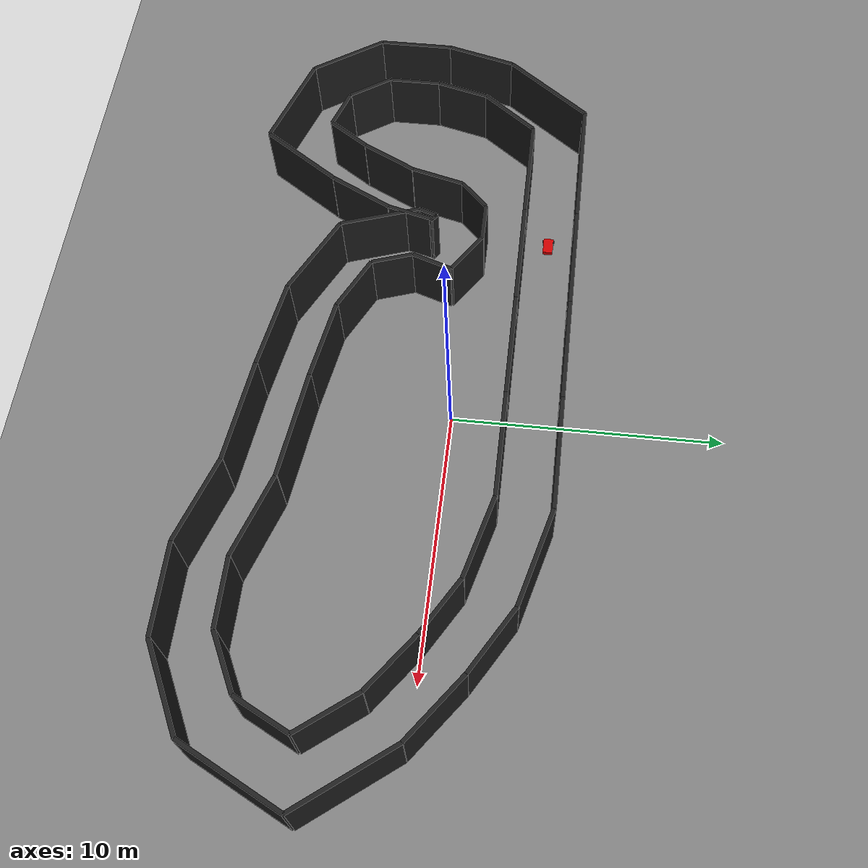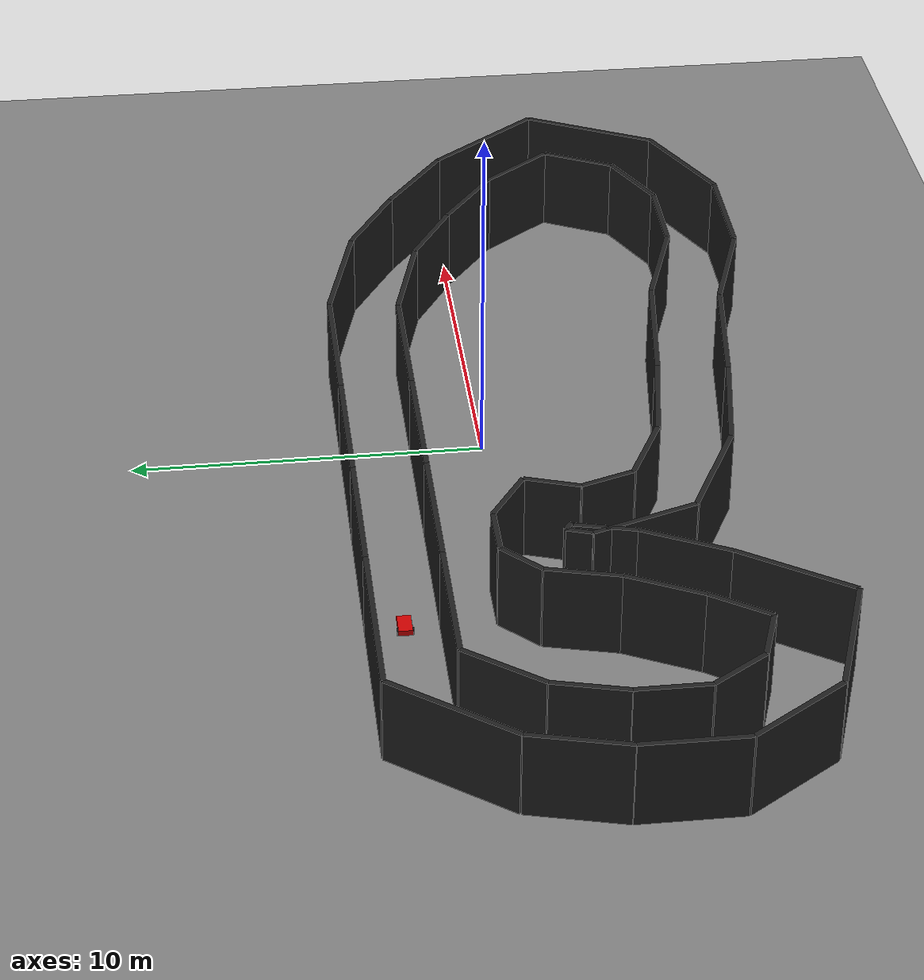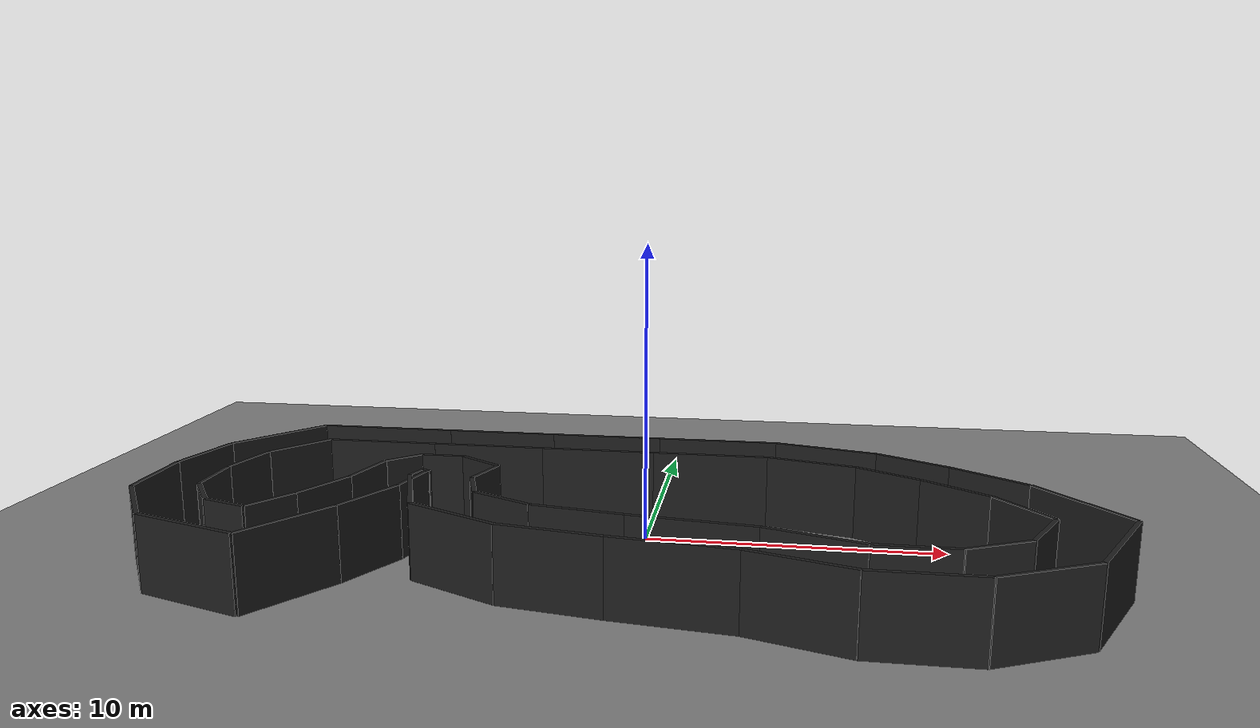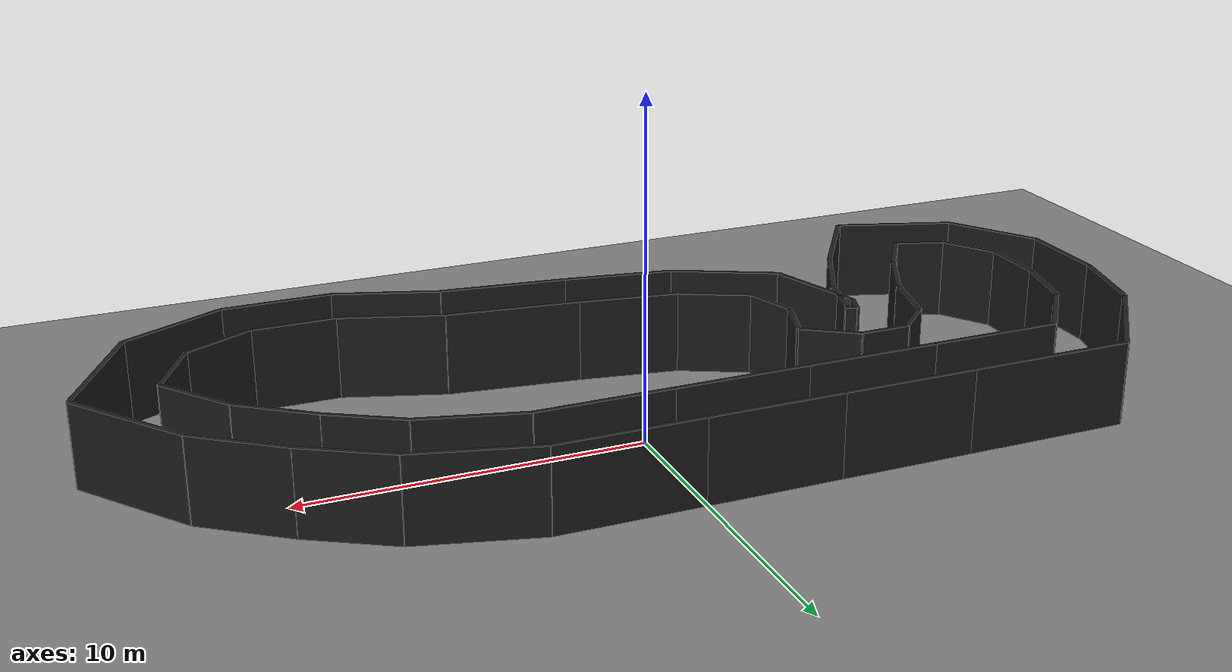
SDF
<?xml version="1.0" ?>
<sdf version="1.8">
    <world name="f1_circuit_world">
        <physics name="1ms" type="ignored">
            <max_step_size>0.001</max_step_size>
            <real_time_factor>1.0</real_time_factor>
        </physics>
        <plugin filename="libignition-gazebo-physics-system.so" name="ignition::gazebo::systems::Physics" />
        <plugin filename="libignition-gazebo-user-commands-system.so" name="ignition::gazebo::systems::UserCommands" />
        <plugin filename="libignition-gazebo-scene-broadcaster-system.so" name="ignition::gazebo::systems::SceneBroadcaster" />
        <plugin filename="libignition-gazebo-sensors-system.so" name="ignition::gazebo::systems::Sensors">
            <render_engine>ogre2</render_engine>
        </plugin>
        <light type="directional" name="sun">
            <cast_shadows>true</cast_shadows>
            <pose>0 0 20 0 0 0</pose>
            <diffuse>0.9 0.9 0.9 1</diffuse>
            <specular>0.3 0.3 0.3 1</specular>
            <direction>-0.5 0.1 -0.9</direction>
        </light>
        <model name="ground_plane">
            <static>true</static>
            <link name="link">
                <collision name="collision"><geometry><plane><normal>0 0 1</normal></plane></geometry></collision>
                <visual name="visual">
                    <geometry><plane><normal>0 0 1</normal><size>200 200</size></plane></geometry>
                    <material><ambient>0.5 0.5 0.5 1</ambient><diffuse>0.5 0.5 0.5 1</diffuse></material>
                </visual>
            </link>
        </model>
        <model name="f1_track">
            <static>true</static>
    <link name='outer_0'>
      <collision name='outer_0_col'>
        <geometry><box><size>4.0000 0.15 2.5</size></box></geometry>
        <pose>0 0 1.25 0 -0 0</pose>
      </collision>
      <visual name='outer_0_vis'>
        <pose>0 0 1.25 0 -0 0</pose>
        <geometry><box><size>4.0000 0.15 2.5</size></box></geometry>
        <material><ambient>0.08 0.08 0.08 1</ambient><diffuse>0.12 0.12 0.12 1</diffuse></material>
      </visual>
      <pose>-10.0000 2.0000 0 0 -0 0.00000</pose>
    </link>
    <link name='outer_1'>
      <collision name='outer_1_col'>
        <geometry><box><size>4.0000 0.15 2.5</size></box></geometry>
        <pose>0 0 1.25 0 -0 0</pose>
      </collision>
      <visual name='outer_1_vis'>
        <pose>0 0 1.25 0 -0 0</pose>
        <geometry><box><size>4.0000 0.15 2.5</size></box></geometry>
        <material><ambient>0.08 0.08 0.08 1</ambient><diffuse>0.12 0.12 0.12 1</diffuse></material>
      </visual>
      <pose>-6.0000 2.0000 0 0 -0 0.00000</pose>
    </link>
    <link name='outer_2'>
      <collision name='outer_2_col'>
        <geometry><box><size>4.0000 0.15 2.5</size></box></geometry>
        <pose>0 0 1.25 0 -0 0</pose>
      </collision>
      <visual name='outer_2_vis'>
        <pose>0 0 1.25 0 -0 0</pose>
        <geometry><box><size>4.0000 0.15 2.5</size></box></geometry>
        <material><ambient>0.08 0.08 0.08 1</ambient><diffuse>0.12 0.12 0.12 1</diffuse></material>
      </visual>
      <pose>-2.0000 2.0000 0 0 -0 0.00000</pose>
    </link>
    <link name='outer_3'>
      <collision name='outer_3_col'>
        <geometry><box><size>4.0000 0.15 2.5</size></box></geometry>
        <pose>0 0 1.25 0 -0 0</pose>
      </collision>
      <visual name='outer_3_vis'>
        <pose>0 0 1.25 0 -0 0</pose>
        <geometry><box><size>4.0000 0.15 2.5</size></box></geometry>
        <material><ambient>0.08 0.08 0.08 1</ambient><diffuse>0.12 0.12 0.12 1</diffuse></material>
      </visual>
      <pose>2.0000 2.0000 0 0 -0 0.00000</pose>
    </link>
    <link name='outer_4'>
      <collision name='outer_4_col'>
        <geometry><box><size>3.1048 0.15 2.5</size></box></geometry>
        <pose>0 0 1.25 0 -0 0</pose>
      </collision>
      <visual name='outer_4_vis'>
        <pose>0 0 1.25 0 -0 0</pose>
        <geometry><box><size>3.1048 0.15 2.5</size></box></geometry>
        <material><ambient>0.08 0.08 0.08 1</ambient><diffuse>0.12 0.12 0.12 1</diffuse></material>
      </visual>
      <pose>5.5000 1.6000 0 0 -0 -0.26060</pose>
    </link>
    <link name='outer_5'>
      <collision name='outer_5_col'>
        <geometry><box><size>2.3324 0.15 2.5</size></box></geometry>
        <pose>0 0 1.25 0 -0 0</pose>
      </collision>
      <visual name='outer_5_vis'>
        <pose>0 0 1.25 0 -0 0</pose>
        <geometry><box><size>2.3324 0.15 2.5</size></box></geometry>
        <material><ambient>0.08 0.08 0.08 1</ambient><diffuse>0.12 0.12 0.12 1</diffuse></material>
      </visual>
      <pose>8.0000 0.6000 0 0 -0 -0.54042</pose>
    </link>
    <link name='outer_6'>
      <collision name='outer_6_col'>
        <geometry><box><size>2.5000 0.15 2.5</size></box></geometry>
        <pose>0 0 1.25 0 -0 0</pose>
      </collision>
      <visual name='outer_6_vis'>
        <pose>0 0 1.25 0 -0 0</pose>
        <geometry><box><size>2.5000 0.15 2.5</size></box></geometry>
        <material><ambient>0.08 0.08 0.08 1</ambient><diffuse>0.12 0.12 0.12 1</diffuse></material>
      </visual>
      <pose>10.0000 -0.7500 0 0 -0 -0.64350</pose>
    </link>
    <link name='outer_7'>
      <collision name='outer_7_col'>
        <geometry><box><size>2.5000 0.15 2.5</size></box></geometry>
        <pose>0 0 1.25 0 -0 0</pose>
      </collision>
      <visual name='outer_7_vis'>
        <pose>0 0 1.25 0 -0 0</pose>
        <geometry><box><size>2.5000 0.15 2.5</size></box></geometry>
        <material><ambient>0.08 0.08 0.08 1</ambient><diffuse>0.12 0.12 0.12 1</diffuse></material>
      </visual>
      <pose>11.7500 -2.5000 0 0 -0 -0.92730</pose>
    </link>
    <link name='outer_8'>
      <collision name='outer_8_col'>
        <geometry><box><size>2.2361 0.15 2.5</size></box></geometry>
        <pose>0 0 1.25 0 -0 0</pose>
      </collision>
      <visual name='outer_8_vis'>
        <pose>0 0 1.25 0 -0 0</pose>
        <geometry><box><size>2.2361 0.15 2.5</size></box></geometry>
        <material><ambient>0.08 0.08 0.08 1</ambient><diffuse>0.12 0.12 0.12 1</diffuse></material>
      </visual>
      <pose>12.0000 -4.5000 0 0 -0 -2.03444</pose>
    </link>
    <link name='outer_9'>
      <collision name='outer_9_col'>
        <geometry><box><size>2.2361 0.15 2.5</size></box></geometry>
        <pose>0 0 1.25 0 -0 0</pose>
      </collision>
      <visual name='outer_9_vis'>
        <pose>0 0 1.25 0 -0 0</pose>
        <geometry><box><size>2.2361 0.15 2.5</size></box></geometry>
        <material><ambient>0.08 0.08 0.08 1</ambient><diffuse>0.12 0.12 0.12 1</diffuse></material>
      </visual>
      <pose>10.5000 -6.0000 0 0 -0 -2.67795</pose>
    </link>
    <link name='outer_10'>
      <collision name='outer_10_col'>
        <geometry><box><size>2.5000 0.15 2.5</size></box></geometry>
        <pose>0 0 1.25 0 -0 0</pose>
      </collision>
      <visual name='outer_10_vis'>
        <pose>0 0 1.25 0 -0 0</pose>
        <geometry><box><size>2.5000 0.15 2.5</size></box></geometry>
        <material><ambient>0.08 0.08 0.08 1</ambient><diffuse>0.12 0.12 0.12 1</diffuse></material>
      </visual>
      <pose>8.2500 -6.5000 0 0 -0 3.14159</pose>
    </link>
    <link name='outer_11'>
      <collision name='outer_11_col'>
        <geometry><box><size>3.1623 0.15 2.5</size></box></geometry>
        <pose>0 0 1.25 0 -0 0</pose>
      </collision>
      <visual name='outer_11_vis'>
        <pose>0 0 1.25 0 -0 0</pose>
        <geometry><box><size>3.1623 0.15 2.5</size></box></geometry>
        <material><ambient>0.08 0.08 0.08 1</ambient><diffuse>0.12 0.12 0.12 1</diffuse></material>
      </visual>
      <pose>5.5000 -6.0000 0 0 -0 2.81984</pose>
    </link>
    <link name='outer_12'>
      <collision name='outer_12_col'>
        <geometry><box><size>4.0311 0.15 2.5</size></box></geometry>
        <pose>0 0 1.25 0 -0 0</pose>
      </collision>
      <visual name='outer_12_vis'>
        <pose>0 0 1.25 0 -0 0</pose>
        <geometry><box><size>4.0311 0.15 2.5</size></box></geometry>
        <material><ambient>0.08 0.08 0.08 1</ambient><diffuse>0.12 0.12 0.12 1</diffuse></material>
      </visual>
      <pose>2.0000 -5.2500 0 0 -0 3.01724</pose>
    </link>
    <link name='outer_13'>
      <collision name='outer_13_col'>
        <geometry><box><size>3.0414 0.15 2.5</size></box></geometry>
        <pose>0 0 1.25 0 -0 0</pose>
      </collision>
      <visual name='outer_13_vis'>
        <pose>0 0 1.25 0 -0 0</pose>
        <geometry><box><size>3.0414 0.15 2.5</size></box></geometry>
        <material><ambient>0.08 0.08 0.08 1</ambient><diffuse>0.12 0.12 0.12 1</diffuse></material>
      </visual>
      <pose>-1.5000 -4.7500 0 0 -0 2.97644</pose>
    </link>
    <link name='outer_14'>
      <collision name='outer_14_col'>
        <geometry><box><size>2.2361 0.15 2.5</size></box></geometry>
        <pose>0 0 1.25 0 -0 0</pose>
      </collision>
      <visual name='outer_14_vis'>
        <pose>0 0 1.25 0 -0 0</pose>
        <geometry><box><size>2.2361 0.15 2.5</size></box></geometry>
        <material><ambient>0.08 0.08 0.08 1</ambient><diffuse>0.12 0.12 0.12 1</diffuse></material>
      </visual>
      <pose>-4.0000 -4.0000 0 0 -0 2.67795</pose>
    </link>
    <link name='outer_15'>
      <collision name='outer_15_col'>
        <geometry><box><size>1.5811 0.15 2.5</size></box></geometry>
        <pose>0 0 1.25 0 -0 0</pose>
      </collision>
      <visual name='outer_15_vis'>
        <pose>0 0 1.25 0 -0 0</pose>
        <geometry><box><size>1.5811 0.15 2.5</size></box></geometry>
        <material><ambient>0.08 0.08 0.08 1</ambient><diffuse>0.12 0.12 0.12 1</diffuse></material>
      </visual>
      <pose>-5.2500 -2.7500 0 0 -0 1.89255</pose>
    </link>
    <link name='outer_16'>
      <collision name='outer_16_col'>
        <geometry><box><size>1.5811 0.15 2.5</size></box></geometry>
        <pose>0 0 1.25 0 -0 0</pose>
      </collision>
      <visual name='outer_16_vis'>
        <pose>0 0 1.25 0 -0 0</pose>
        <geometry><box><size>1.5811 0.15 2.5</size></box></geometry>
        <material><ambient>0.08 0.08 0.08 1</ambient><diffuse>0.12 0.12 0.12 1</diffuse></material>
      </visual>
      <pose>-5.2500 -1.2500 0 0 -0 1.24905</pose>
    </link>
    <link name='outer_17'>
      <collision name='outer_17_col'>
        <geometry><box><size>1.8028 0.15 2.5</size></box></geometry>
        <pose>0 0 1.25 0 -0 0</pose>
      </collision>
      <visual name='outer_17_vis'>
        <pose>0 0 1.25 0 -0 0</pose>
        <geometry><box><size>1.8028 0.15 2.5</size></box></geometry>
        <material><ambient>0.08 0.08 0.08 1</ambient><diffuse>0.12 0.12 0.12 1</diffuse></material>
      </visual>
      <pose>-5.7500 0.0000 0 0 -0 2.55359</pose>
    </link>
    <link name='outer_18'>
      <collision name='outer_18_col'>
        <geometry><box><size>1.5000 0.15 2.5</size></box></geometry>
        <pose>0 0 1.25 0 -0 0</pose>
      </collision>
      <visual name='outer_18_vis'>
        <pose>0 0 1.25 0 -0 0</pose>
        <geometry><box><size>1.5000 0.15 2.5</size></box></geometry>
        <material><ambient>0.08 0.08 0.08 1</ambient><diffuse>0.12 0.12 0.12 1</diffuse></material>
      </visual>
      <pose>-7.2500 0.5000 0 0 -0 3.14159</pose>
    </link>
    <link name='outer_19'>
      <collision name='outer_19_col'>
        <geometry><box><size>1.4142 0.15 2.5</size></box></geometry>
        <pose>0 0 1.25 0 -0 0</pose>
      </collision>
      <visual name='outer_19_vis'>
        <pose>0 0 1.25 0 -0 0</pose>
        <geometry><box><size>1.4142 0.15 2.5</size></box></geometry>
        <material><ambient>0.08 0.08 0.08 1</ambient><diffuse>0.12 0.12 0.12 1</diffuse></material>
      </visual>
      <pose>-8.5000 0.0000 0 0 -0 -2.35619</pose>
    </link>
    <link name='outer_20'>
      <collision name='outer_20_col'>
        <geometry><box><size>2.0616 0.15 2.5</size></box></geometry>
        <pose>0 0 1.25 0 -0 0</pose>
      </collision>
      <visual name='outer_20_vis'>
        <pose>0 0 1.25 0 -0 0</pose>
        <geometry><box><size>2.0616 0.15 2.5</size></box></geometry>
        <material><ambient>0.08 0.08 0.08 1</ambient><diffuse>0.12 0.12 0.12 1</diffuse></material>
      </visual>
      <pose>-9.2500 -1.5000 0 0 -0 -1.81577</pose>
    </link>
    <link name='outer_21'>
      <collision name='outer_21_col'>
        <geometry><box><size>2.2361 0.15 2.5</size></box></geometry>
        <pose>0 0 1.25 0 -0 0</pose>
      </collision>
      <visual name='outer_21_vis'>
        <pose>0 0 1.25 0 -0 0</pose>
        <geometry><box><size>2.2361 0.15 2.5</size></box></geometry>
        <material><ambient>0.08 0.08 0.08 1</ambient><diffuse>0.12 0.12 0.12 1</diffuse></material>
      </visual>
      <pose>-10.0000 -3.5000 0 0 -0 -2.03444</pose>
    </link>
    <link name='outer_22'>
      <collision name='outer_22_col'>
        <geometry><box><size>1.8028 0.15 2.5</size></box></geometry>
        <pose>0 0 1.25 0 -0 0</pose>
      </collision>
      <visual name='outer_22_vis'>
        <pose>0 0 1.25 0 -0 0</pose>
        <geometry><box><size>1.8028 0.15 2.5</size></box></geometry>
        <material><ambient>0.08 0.08 0.08 1</ambient><diffuse>0.12 0.12 0.12 1</diffuse></material>
      </visual>
      <pose>-11.0000 -5.2500 0 0 -0 -2.15880</pose>
    </link>
    <link name='outer_23'>
      <collision name='outer_23_col'>
        <geometry><box><size>1.5811 0.15 2.5</size></box></geometry>
        <pose>0 0 1.25 0 -0 0</pose>
      </collision>
      <visual name='outer_23_vis'>
        <pose>0 0 1.25 0 -0 0</pose>
        <geometry><box><size>1.5811 0.15 2.5</size></box></geometry>
        <material><ambient>0.08 0.08 0.08 1</ambient><diffuse>0.12 0.12 0.12 1</diffuse></material>
      </visual>
      <pose>-12.2500 -5.7500 0 0 -0 2.81984</pose>
    </link>
    <link name='outer_24'>
      <collision name='outer_24_col'>
        <geometry><box><size>1.8028 0.15 2.5</size></box></geometry>
        <pose>0 0 1.25 0 -0 0</pose>
      </collision>
      <visual name='outer_24_vis'>
        <pose>0 0 1.25 0 -0 0</pose>
        <geometry><box><size>1.8028 0.15 2.5</size></box></geometry>
        <material><ambient>0.08 0.08 0.08 1</ambient><diffuse>0.12 0.12 0.12 1</diffuse></material>
      </visual>
      <pose>-13.5000 -4.7500 0 0 -0 2.15880</pose>
    </link>
    <link name='outer_25'>
      <collision name='outer_25_col'>
        <geometry><box><size>2.0000 0.15 2.5</size></box></geometry>
        <pose>0 0 1.25 0 -0 0</pose>
      </collision>
      <visual name='outer_25_vis'>
        <pose>0 0 1.25 0 -0 0</pose>
        <geometry><box><size>2.0000 0.15 2.5</size></box></geometry>
        <material><ambient>0.08 0.08 0.08 1</ambient><diffuse>0.12 0.12 0.12 1</diffuse></material>
      </visual>
      <pose>-14.0000 -3.0000 0 0 -0 1.57080</pose>
    </link>
    <link name='outer_26'>
      <collision name='outer_26_col'>
        <geometry><box><size>2.0616 0.15 2.5</size></box></geometry>
        <pose>0 0 1.25 0 -0 0</pose>
      </collision>
      <visual name='outer_26_vis'>
        <pose>0 0 1.25 0 -0 0</pose>
        <geometry><box><size>2.0616 0.15 2.5</size></box></geometry>
        <material><ambient>0.08 0.08 0.08 1</ambient><diffuse>0.12 0.12 0.12 1</diffuse></material>
      </visual>
      <pose>-13.7500 -1.0000 0 0 -0 1.32582</pose>
    </link>
    <link name='outer_27'>
      <collision name='outer_27_col'>
        <geometry><box><size>2.5000 0.15 2.5</size></box></geometry>
        <pose>0 0 1.25 0 -0 0</pose>
      </collision>
      <visual name='outer_27_vis'>
        <pose>0 0 1.25 0 -0 0</pose>
        <geometry><box><size>2.5000 0.15 2.5</size></box></geometry>
        <material><ambient>0.08 0.08 0.08 1</ambient><diffuse>0.12 0.12 0.12 1</diffuse></material>
      </visual>
      <pose>-12.7500 1.0000 0 0 -0 0.92730</pose>
    </link>
    <link name='inner_0'>
      <collision name='inner_0_col'>
        <geometry><box><size>5.0000 0.15 2.5</size></box></geometry>
        <pose>0 0 1.25 0 -0 0</pose>
      </collision>
      <visual name='inner_0_vis'>
        <pose>0 0 1.25 0 -0 0</pose>
        <geometry><box><size>5.0000 0.15 2.5</size></box></geometry>
        <material><ambient>0.08 0.08 0.08 1</ambient><diffuse>0.12 0.12 0.12 1</diffuse></material>
      </visual>
      <pose>-10.5000 4.0000 0 0 -0 0.00000</pose>
    </link>
    <link name='inner_1'>
      <collision name='inner_1_col'>
        <geometry><box><size>4.0000 0.15 2.5</size></box></geometry>
        <pose>0 0 1.25 0 -0 0</pose>
      </collision>
      <visual name='inner_1_vis'>
        <pose>0 0 1.25 0 -0 0</pose>
        <geometry><box><size>4.0000 0.15 2.5</size></box></geometry>
        <material><ambient>0.08 0.08 0.08 1</ambient><diffuse>0.12 0.12 0.12 1</diffuse></material>
      </visual>
      <pose>-6.0000 4.0000 0 0 -0 0.00000</pose>
    </link>
    <link name='inner_2'>
      <collision name='inner_2_col'>
        <geometry><box><size>4.0000 0.15 2.5</size></box></geometry>
        <pose>0 0 1.25 0 -0 0</pose>
      </collision>
      <visual name='inner_2_vis'>
        <pose>0 0 1.25 0 -0 0</pose>
        <geometry><box><size>4.0000 0.15 2.5</size></box></geometry>
        <material><ambient>0.08 0.08 0.08 1</ambient><diffuse>0.12 0.12 0.12 1</diffuse></material>
      </visual>
      <pose>-2.0000 4.0000 0 0 -0 0.00000</pose>
    </link>
    <link name='inner_3'>
      <collision name='inner_3_col'>
        <geometry><box><size>4.2621 0.15 2.5</size></box></geometry>
        <pose>0 0 1.25 0 -0 0</pose>
      </collision>
      <visual name='inner_3_vis'>
        <pose>0 0 1.25 0 -0 0</pose>
        <geometry><box><size>4.2621 0.15 2.5</size></box></geometry>
        <material><ambient>0.08 0.08 0.08 1</ambient><diffuse>0.12 0.12 0.12 1</diffuse></material>
      </visual>
      <pose>2.1310 4.0000 0 0 -0 0.00000</pose>
    </link>
    <link name='inner_4'>
      <collision name='inner_4_col'>
        <geometry><box><size>3.6486 0.15 2.5</size></box></geometry>
        <pose>0 0 1.25 0 -0 0</pose>
      </collision>
      <visual name='inner_4_vis'>
        <pose>0 0 1.25 0 -0 0</pose>
        <geometry><box><size>3.6486 0.15 2.5</size></box></geometry>
        <material><ambient>0.08 0.08 0.08 1</ambient><diffuse>0.12 0.12 0.12 1</diffuse></material>
      </visual>
      <pose>6.0248 3.5299 0 0 -0 -0.26060</pose>
    </link>
    <link name='inner_5'>
      <collision name='inner_5_col'>
        <geometry><box><size>2.7172 0.15 2.5</size></box></geometry>
        <pose>0 0 1.25 0 -0 0</pose>
      </collision>
      <visual name='inner_5_vis'>
        <pose>0 0 1.25 0 -0 0</pose>
        <geometry><box><size>2.7172 0.15 2.5</size></box></geometry>
        <material><ambient>0.08 0.08 0.08 1</ambient><diffuse>0.12 0.12 0.12 1</diffuse></material>
      </visual>
      <pose>8.9525 2.3609 0 0 -0 -0.54042</pose>
    </link>
    <link name='inner_6'>
      <collision name='inner_6_col'>
        <geometry><box><size>2.8889 0.15 2.5</size></box></geometry>
        <pose>0 0 1.25 0 -0 0</pose>
      </collision>
      <visual name='inner_6_vis'>
        <pose>0 0 1.25 0 -0 0</pose>
        <geometry><box><size>2.8889 0.15 2.5</size></box></geometry>
        <material><ambient>0.08 0.08 0.08 1</ambient><diffuse>0.12 0.12 0.12 1</diffuse></material>
      </visual>
      <pose>11.2730 0.7952 0 0 -0 -0.64350</pose>
    </link>
    <link name='inner_7'>
      <collision name='inner_7_col'>
        <geometry><box><size>4.0218 0.15 2.5</size></box></geometry>
        <pose>0 0 1.25 0 -0 0</pose>
      </collision>
      <visual name='inner_7_vis'>
        <pose>0 0 1.25 0 -0 0</pose>
        <geometry><box><size>4.0218 0.15 2.5</size></box></geometry>
        <material><ambient>0.08 0.08 0.08 1</ambient><diffuse>0.12 0.12 0.12 1</diffuse></material>
      </visual>
      <pose>13.6351 -1.6801 0 0 -0 -0.92730</pose>
    </link>
    <link name='inner_8'>
      <collision name='inner_8_col'>
        <geometry><box><size>4.1388 0.15 2.5</size></box></geometry>
        <pose>0 0 1.25 0 -0 0</pose>
      </collision>
      <visual name='inner_8_vis'>
        <pose>0 0 1.25 0 -0 0</pose>
        <geometry><box><size>4.1388 0.15 2.5</size></box></geometry>
        <material><ambient>0.08 0.08 0.08 1</ambient><diffuse>0.12 0.12 0.12 1</diffuse></material>
      </visual>
      <pose>13.9162 -5.1398 0 0 -0 -2.03444</pose>
    </link>
    <link name='inner_9'>
      <collision name='inner_9_col'>
        <geometry><box><size>3.3749 0.15 2.5</size></box></geometry>
        <pose>0 0 1.25 0 -0 0</pose>
      </collision>
      <visual name='inner_9_vis'>
        <pose>0 0 1.25 0 -0 0</pose>
        <geometry><box><size>3.3749 0.15 2.5</size></box></geometry>
        <material><ambient>0.08 0.08 0.08 1</ambient><diffuse>0.12 0.12 0.12 1</diffuse></material>
      </visual>
      <pose>11.4814 -7.7454 0 0 -0 -2.67795</pose>
    </link>
    <link name='inner_10'>
      <collision name='inner_10_col'>
        <geometry><box><size>3.2967 0.15 2.5</size></box></geometry>
        <pose>0 0 1.25 0 -0 0</pose>
      </collision>
      <visual name='inner_10_vis'>
        <pose>0 0 1.25 0 -0 0</pose>
        <geometry><box><size>3.2967 0.15 2.5</size></box></geometry>
        <material><ambient>0.08 0.08 0.08 1</ambient><diffuse>0.12 0.12 0.12 1</diffuse></material>
      </visual>
      <pose>8.3238 -8.5000 0 0 -0 3.14159</pose>
    </link>
    <link name='inner_11'>
      <collision name='inner_11_col'>
        <geometry><box><size>3.2888 0.15 2.5</size></box></geometry>
        <pose>0 0 1.25 0 -0 0</pose>
      </collision>
      <visual name='inner_11_vis'>
        <pose>0 0 1.25 0 -0 0</pose>
        <geometry><box><size>3.2888 0.15 2.5</size></box></geometry>
        <material><ambient>0.08 0.08 0.08 1</ambient><diffuse>0.12 0.12 0.12 1</diffuse></material>
      </visual>
      <pose>5.1154 -7.9800 0 0 -0 2.81984</pose>
    </link>
    <link name='inner_12'>
      <collision name='inner_12_col'>
        <geometry><box><size>3.8739 0.15 2.5</size></box></geometry>
        <pose>0 0 1.25 0 -0 0</pose>
      </collision>
      <visual name='inner_12_vis'>
        <pose>0 0 1.25 0 -0 0</pose>
        <geometry><box><size>3.8739 0.15 2.5</size></box></geometry>
        <material><ambient>0.08 0.08 0.08 1</ambient><diffuse>0.12 0.12 0.12 1</diffuse></material>
      </visual>
      <pose>1.6334 -7.2197 0 0 -0 3.01724</pose>
    </link>
    <link name='inner_13'>
      <collision name='inner_13_col'>
        <geometry><box><size>3.3829 0.15 2.5</size></box></geometry>
        <pose>0 0 1.25 0 -0 0</pose>
      </collision>
      <visual name='inner_13_vis'>
        <pose>0 0 1.25 0 -0 0</pose>
        <geometry><box><size>3.3829 0.15 2.5</size></box></geometry>
        <material><ambient>0.08 0.08 0.08 1</ambient><diffuse>0.12 0.12 0.12 1</diffuse></material>
      </visual>
      <pose>-1.9570 -6.7014 0 0 -0 2.97644</pose>
    </link>
    <link name='inner_14'>
      <collision name='inner_14_col'>
        <geometry><box><size>3.3652 0.15 2.5</size></box></geometry>
        <pose>0 0 1.25 0 -0 0</pose>
      </collision>
      <visual name='inner_14_vis'>
        <pose>0 0 1.25 0 -0 0</pose>
        <geometry><box><size>3.3652 0.15 2.5</size></box></geometry>
        <material><ambient>0.08 0.08 0.08 1</ambient><diffuse>0.12 0.12 0.12 1</diffuse></material>
      </visual>
      <pose>-5.1304 -5.6709 0 0 -0 2.67795</pose>
    </link>
    <link name='inner_15'>
      <collision name='inner_15_col'>
        <geometry><box><size>3.0762 0.15 2.5</size></box></geometry>
        <pose>0 0 1.25 0 -0 0</pose>
      </collision>
      <visual name='inner_15_vis'>
        <pose>0 0 1.25 0 -0 0</pose>
        <geometry><box><size>3.0762 0.15 2.5</size></box></geometry>
        <material><ambient>0.08 0.08 0.08 1</ambient><diffuse>0.12 0.12 0.12 1</diffuse></material>
      </visual>
      <pose>-7.1218 -3.4592 0 0 -0 1.89255</pose>
    </link>
    <link name='inner_16'>
      <collision name='inner_16_col'>
        <geometry><box><size>0.7202 0.15 2.5</size></box></geometry>
        <pose>0 0 1.25 0 -0 0</pose>
      </collision>
      <visual name='inner_16_vis'>
        <pose>0 0 1.25 0 -0 0</pose>
        <geometry><box><size>0.7202 0.15 2.5</size></box></geometry>
        <material><ambient>0.08 0.08 0.08 1</ambient><diffuse>0.12 0.12 0.12 1</diffuse></material>
      </visual>
      <pose>-7.4943 -1.6584 0 0 -0 1.24905</pose>
    </link>
    <link name='inner_17'>
      <collision name='inner_17_col'>
        <geometry><box><size>0.3304 0.15 2.5</size></box></geometry>
        <pose>0 0 1.25 0 -0 0</pose>
      </collision>
      <visual name='inner_17_vis'>
        <pose>0 0 1.25 0 -0 0</pose>
        <geometry><box><size>0.3304 0.15 2.5</size></box></geometry>
        <material><ambient>0.08 0.08 0.08 1</ambient><diffuse>0.12 0.12 0.12 1</diffuse></material>
      </visual>
      <pose>-7.2430 -1.4084 0 0 -0 -0.58800</pose>
    </link>
    <link name='inner_18'>
      <collision name='inner_18_col'>
        <geometry><box><size>0.0660 0.15 2.5</size></box></geometry>
        <pose>0 0 1.25 0 -0 0</pose>
      </collision>
      <visual name='inner_18_vis'>
        <pose>0 0 1.25 0 -0 0</pose>
        <geometry><box><size>0.0660 0.15 2.5</size></box></geometry>
        <material><ambient>0.08 0.08 0.08 1</ambient><diffuse>0.12 0.12 0.12 1</diffuse></material>
      </visual>
      <pose>-7.1386 -1.5000 0 0 -0 3.14159</pose>
    </link>
    <link name='inner_20'>
      <collision name='inner_20_col'>
        <geometry><box><size>1.7271 0.15 2.5</size></box></geometry>
        <pose>0 0 1.25 0 -0 0</pose>
      </collision>
      <visual name='inner_20_vis'>
        <pose>0 0 1.25 0 -0 0</pose>
        <geometry><box><size>1.7271 0.15 2.5</size></box></geometry>
        <material><ambient>0.08 0.08 0.08 1</ambient><diffuse>0.12 0.12 0.12 1</diffuse></material>
      </visual>
      <pose>-7.4035 -2.3603 0 0 -0 -1.81577</pose>
    </link>
    <link name='inner_21'>
      <collision name='inner_21_col'>
        <geometry><box><size>2.5801 0.15 2.5</size></box></geometry>
        <pose>0 0 1.25 0 -0 0</pose>
      </collision>
      <visual name='inner_21_vis'>
        <pose>0 0 1.25 0 -0 0</pose>
        <geometry><box><size>2.5801 0.15 2.5</size></box></geometry>
        <material><ambient>0.08 0.08 0.08 1</ambient><diffuse>0.12 0.12 0.12 1</diffuse></material>
      </visual>
      <pose>-8.1899 -4.3519 0 0 -0 -2.03444</pose>
    </link>
    <link name='inner_22'>
      <collision name='inner_22_col'>
        <geometry><box><size>3.4549 0.15 2.5</size></box></geometry>
        <pose>0 0 1.25 0 -0 0</pose>
      </collision>
      <visual name='inner_22_vis'>
        <pose>0 0 1.25 0 -0 0</pose>
        <geometry><box><size>3.4549 0.15 2.5</size></box></geometry>
        <material><ambient>0.08 0.08 0.08 1</ambient><diffuse>0.12 0.12 0.12 1</diffuse></material>
      </visual>
      <pose>-9.7250 -6.9431 0 0 -0 -2.15880</pose>
    </link>
    <link name='inner_23'>
      <collision name='inner_23_col'>
        <geometry><box><size>3.7949 0.15 2.5</size></box></geometry>
        <pose>0 0 1.25 0 -0 0</pose>
      </collision>
      <visual name='inner_23_vis'>
        <pose>0 0 1.25 0 -0 0</pose>
        <geometry><box><size>3.7949 0.15 2.5</size></box></geometry>
        <material><ambient>0.08 0.08 0.08 1</ambient><diffuse>0.12 0.12 0.12 1</diffuse></material>
      </visual>
      <pose>-12.4834 -7.7804 0 0 -0 2.81984</pose>
    </link>
    <link name='inner_24'>
      <collision name='inner_24_col'>
        <geometry><box><size>3.0945 0.15 2.5</size></box></geometry>
        <pose>0 0 1.25 0 -0 0</pose>
      </collision>
      <visual name='inner_24_vis'>
        <pose>0 0 1.25 0 -0 0</pose>
        <geometry><box><size>3.0945 0.15 2.5</size></box></geometry>
        <material><ambient>0.08 0.08 0.08 1</ambient><diffuse>0.12 0.12 0.12 1</diffuse></material>
      </visual>
      <pose>-15.1417 -5.8930 0 0 -0 2.15880</pose>
    </link>
    <link name='inner_25'>
      <collision name='inner_25_col'>
        <geometry><box><size>2.8518 0.15 2.5</size></box></geometry>
        <pose>0 0 1.25 0 -0 0</pose>
      </collision>
      <visual name='inner_25_vis'>
        <pose>0 0 1.25 0 -0 0</pose>
        <geometry><box><size>2.8518 0.15 2.5</size></box></geometry>
        <material><ambient>0.08 0.08 0.08 1</ambient><diffuse>0.12 0.12 0.12 1</diffuse></material>
      </visual>
      <pose>-16.0000 -3.1797 0 0 -0 1.57080</pose>
    </link>
    <link name='inner_26'>
      <collision name='inner_26_col'>
        <geometry><box><size>2.7116 0.15 2.5</size></box></geometry>
        <pose>0 0 1.25 0 -0 0</pose>
      </collision>
      <visual name='inner_26_vis'>
        <pose>0 0 1.25 0 -0 0</pose>
        <geometry><box><size>2.7116 0.15 2.5</size></box></geometry>
        <material><ambient>0.08 0.08 0.08 1</ambient><diffuse>0.12 0.12 0.12 1</diffuse></material>
      </visual>
      <pose>-15.6712 -0.4384 0 0 -0 1.32582</pose>
    </link>
    <link name='inner_27'>
      <collision name='inner_27_col'>
        <geometry><box><size>3.9039 0.15 2.5</size></box></geometry>
        <pose>0 0 1.25 0 -0 0</pose>
      </collision>
      <visual name='inner_27_vis'>
        <pose>0 0 1.25 0 -0 0</pose>
        <geometry><box><size>3.9039 0.15 2.5</size></box></geometry>
        <material><ambient>0.08 0.08 0.08 1</ambient><diffuse>0.12 0.12 0.12 1</diffuse></material>
      </visual>
      <pose>-14.1712 2.4384 0 0 -0 0.92730</pose>
    </link>
        </model>
        <model name='vehicle_red' canonical_link='chassis'>
            <pose>-8.0 3.0 0.15 0 0 0</pose>
            <link name='chassis'>
                <pose>0 0 0 0 0 0</pose>
                <inertial><mass>0.5</mass><inertia><ixx>0.02</ixx><ixy>0</ixy><ixz>0</ixz><iyy>0.05</iyy><iyz>0</iyz><izz>0.06</izz></inertia></inertial>
                <visual name='visual'><geometry><box><size>0.65 0.38 0.16</size></box></geometry>
                  <material><ambient>0.8 0.0 0.0 1</ambient><diffuse>0.8 0.0 0.0 1</diffuse></material></visual>
                <collision name='collision'><geometry><box><size>0.65 0.38 0.16</size></box></geometry></collision>
            </link>
            <link name="lidar_link">
                <pose>0.25 0 0.25 0 0 0</pose>
                <sensor name='gpu_lidar' type='gpu_lidar'>
                    <topic>scan</topic><update_rate>50</update_rate>
                    <ray><scan><horizontal><samples>360</samples><resolution>1</resolution><min_angle>-3.14</min_angle><max_angle>3.14</max_angle></horizontal></scan>
                    <range><min>0.15</min><max>50</max></range></ray>
                    <always_on>1</always_on><visualize>true</visualize>
                </sensor>
            </link>
            <joint name='lidar_joint' type='fixed'><parent>chassis</parent><child>lidar_link</child></joint>
            <link name='left_wheel'>
                <pose>-0.20 0.20 -0.04 -1.57 0 0</pose>
                <inertial><mass>0.05</mass><inertia><ixx>0.0001</ixx><ixy>0</ixy><ixz>0</ixz><iyy>0.0001</iyy><iyz>0</iyz><izz>0.0001</izz></inertia></inertial>
                <visual name='v'><geometry><cylinder><radius>0.10</radius><length>0.05</length></cylinder></geometry><material><ambient>0.1 0.1 0.1 1</ambient></material></visual>
                <collision name='c'><geometry><cylinder><radius>0.10</radius><length>0.05</length></cylinder></geometry></collision>
            </link>
            <link name='right_wheel'>
                <pose>-0.20 -0.20 -0.04 -1.57 0 0</pose>
                <inertial><mass>0.05</mass><inertia><ixx>0.0001</ixx><ixy>0</ixy><ixz>0</ixz><iyy>0.0001</iyy><iyz>0</iyz><izz>0.0001</izz></inertia></inertial>
                <visual name='v'><geometry><cylinder><radius>0.10</radius><length>0.05</length></cylinder></geometry><material><ambient>0.1 0.1 0.1 1</ambient></material></visual>
                <collision name='c'><geometry><cylinder><radius>0.10</radius><length>0.05</length></cylinder></geometry></collision>
            </link>
            <link name='caster'>
                <pose>0.25 0 -0.08 0 0 0</pose>
                <inertial><mass>0.02</mass><inertia><ixx>0.00005</ixx><ixy>0</ixy><ixz>0</ixz><iyy>0.00005</iyy><iyz>0</iyz><izz>0.00005</izz></inertia></inertial>
                <visual name='v'><geometry><sphere><radius>0.05</radius></sphere></geometry></visual>
                <collision name='c'><geometry><sphere><radius>0.05</radius></sphere></geometry></collision>
            </link>
            <joint name='left_wheel_joint' type='revolute'><parent>chassis</parent><child>left_wheel</child>
                <axis><xyz>0 0 1</xyz><limit><lower>-1e16</lower><upper>1e16</upper></limit></axis></joint>
            <joint name='right_wheel_joint' type='revolute'><parent>chassis</parent><child>right_wheel</child>
                <axis><xyz>0 0 1</xyz><limit><lower>-1e16</lower><upper>1e16</upper></limit></axis></joint>
            <joint name='caster_joint' type='ball'><parent>chassis</parent><child>caster</child></joint>
            <plugin filename="libignition-gazebo-diff-drive-system.so" name="ignition::gazebo::systems::DiffDrive">
                <left_joint>left_wheel_joint</left_joint><right_joint>right_wheel_joint</right_joint>
                <wheel_separation>0.40</wheel_separation><wheel_radius>0.10</wheel_radius>
                <odom_publish_frequency>50</odom_publish_frequency><topic>cmd_vel</topic>
            </plugin>
        </model>
        <plugin filename="libignition-gazebo-triggered-publisher-system.so" name="ignition::gazebo::systems::TriggeredPublisher">
            <input type="ignition.msgs.Int32" topic="/keyboard/keypress"><match field="data">16777235</match></input>
            <output type="ignition.msgs.Twist" topic="/cmd_vel">linear: {x: 1.5}</output>
        </plugin>
        <plugin filename="libignition-gazebo-triggered-publisher-system.so" name="ignition::gazebo::systems::TriggeredPublisher">
            <input type="ignition.msgs.Int32" topic="/keyboard/keypress"><match field="data">16777237</match></input>
            <output type="ignition.msgs.Twist" topic="/cmd_vel">linear: {x: -1.5}</output>
        </plugin>
        <plugin filename="libignition-gazebo-triggered-publisher-system.so" name="ignition::gazebo::systems::TriggeredPublisher">
            <input type="ignition.msgs.Int32" topic="/keyboard/keypress"><match field="data">16777234</match></input>
            <output type="ignition.msgs.Twist" topic="/cmd_vel">angular: {z: 1.2}</output>
        </plugin>
        <plugin filename="libignition-gazebo-triggered-publisher-system.so" name="ignition::gazebo::systems::TriggeredPublisher">
            <input type="ignition.msgs.Int32" topic="/keyboard/keypress"><match field="data">16777236</match></input>
            <output type="ignition.msgs.Twist" topic="/cmd_vel">angular: {z: -1.2}</output>
        </plugin>
    </world>
</sdf>
